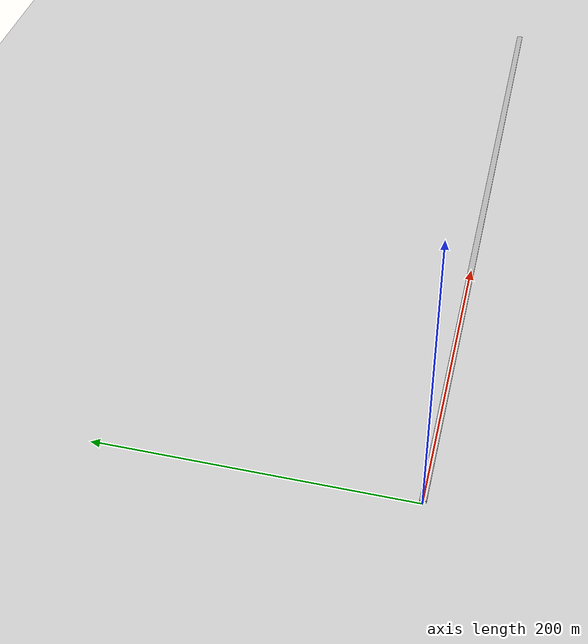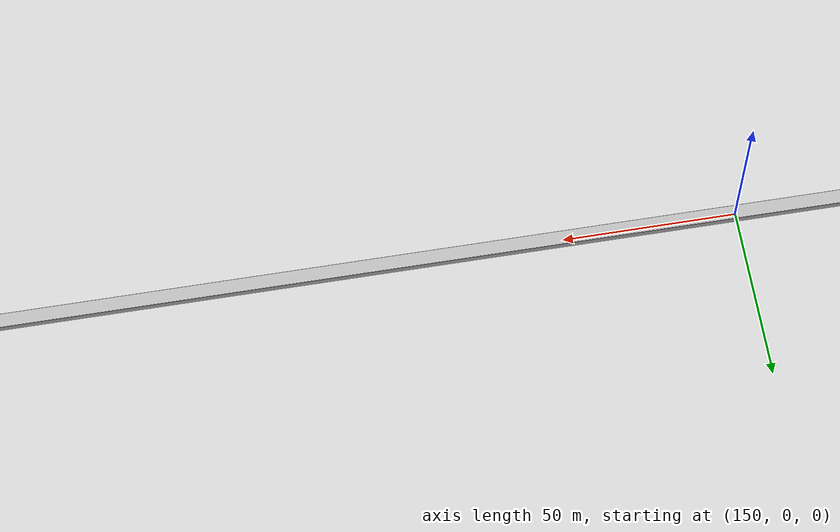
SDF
<?xml version="1.0" ?>
<sdf version="1.6">
  <world name="corredor_500m">
    <!-- Luz do ambiente -->
    <include>
      <uri>model://sun</uri>
    </include>

    <!-- Chão plano -->
    <include>
      <uri>model://ground_plane</uri>
    </include>

    <!-- Paredes laterais do corredor -->

    <model name="parede_esquerda">
      <static>true</static>
      <link name="link">
        <visual name="visual">
          <geometry>
            <box>
              <size>500 0.2 2</size>
            </box>
          </geometry>
          <material>
            <ambient>0.7 0.7 0.7 1</ambient>
          </material>
        </visual>
        <collision name="collision">
          <geometry>
            <box>
              <size>500 0.2 2</size>
            </box>
          </geometry>
        </collision>
        <pose>251 -2 1 0 0 0</pose>
      </link>
    </model>

    <model name="parede_direita">
      <static>true</static>
      <link name="link">
        <visual name="visual">
          <geometry>
            <box>
              <size>500 0.2 2</size>
            </box>
          </geometry>
          <material>
            <ambient>0.7 0.7 0.7 1</ambient>
          </material>
        </visual>
        <collision name="collision">
          <geometry>
            <box>
              <size>500 0.2 2</size>
            </box>
          </geometry>
        </collision>
        <pose>251 2 1 0 0 0</pose>
      </link>
    </model>

    <model name="teto">
      <static>true</static>
      <link name="link">
        <visual name="visual">
          <geometry>
            <box>
              <size>500 4 0.2</size>
            </box>
          </geometry>
          <material>
            <ambient>0.7 0.7 0.7 1</ambient>
          </material>
        </visual>
        <collision name="collision">
          <geometry>
            <box>
              <size>500 4 0.2</size>
            </box>
          </geometry>
        </collision>
        <pose>251 0 2.01 0 0 0</pose>
      </link>
    </model>

  </world>
</sdf>
